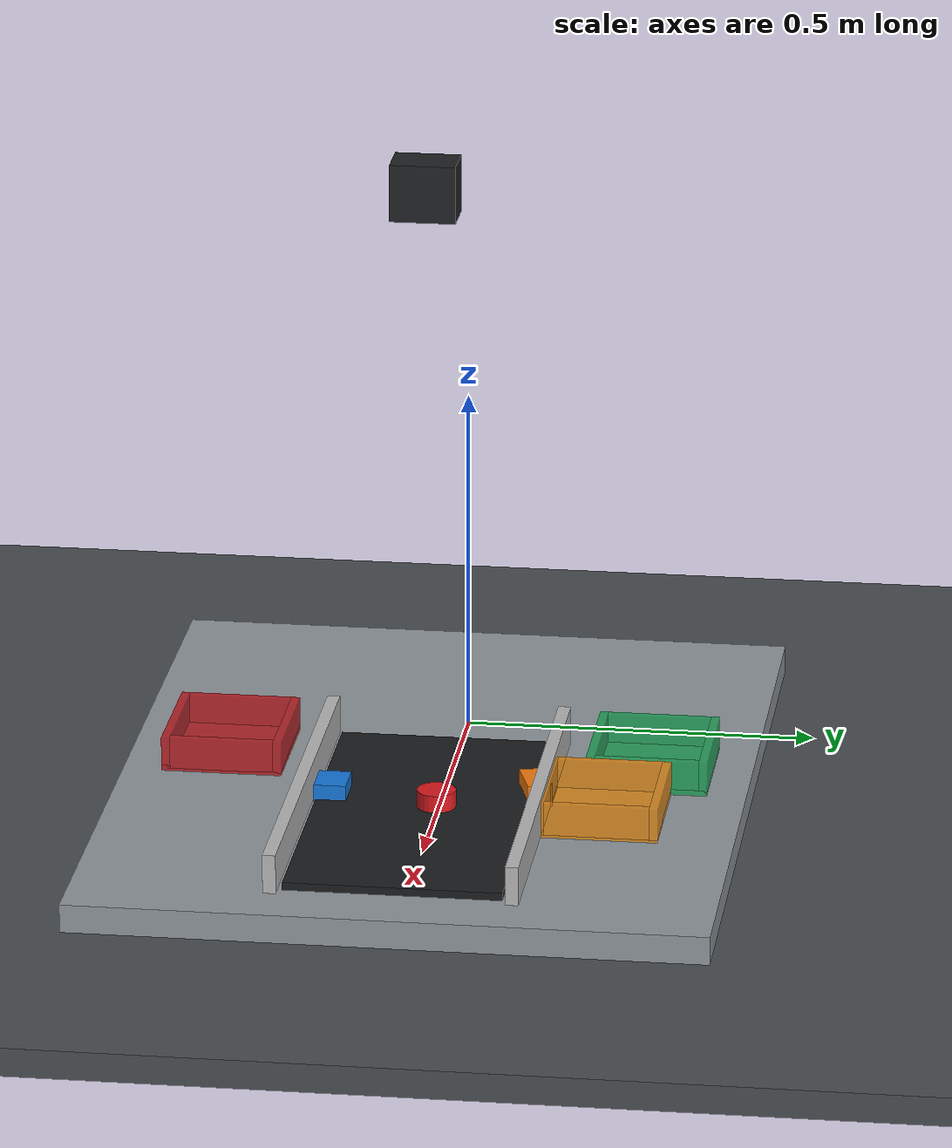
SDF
<?xml version="1.0"?>
<sdf version="1.10">
  <world name="sorting_cell">
    <physics name="fast_physics" type="ignored">
      <max_step_size>0.004</max_step_size>
      <real_time_factor>1.0</real_time_factor>
    </physics>
    <gravity>0 0 -9.81</gravity>

    <plugin filename="gz-sim-physics-system" name="gz::sim::systems::Physics"/>
    <plugin filename="gz-sim-user-commands-system" name="gz::sim::systems::UserCommands"/>
    <plugin filename="gz-sim-scene-broadcaster-system" name="gz::sim::systems::SceneBroadcaster"/>
    <plugin filename="gz-sim-sensors-system" name="gz::sim::systems::Sensors">
      <render_engine>ogre2</render_engine>
    </plugin>

    <scene>
      <ambient>0.42 0.42 0.45 1</ambient>
      <background>0.78 0.82 0.85 1</background>
      <shadows>false</shadows>
    </scene>

    <light name="key_light" type="directional">
      <pose>0 0 2.8 0 0 0</pose>
      <diffuse>0.95 0.95 0.92 1</diffuse>
      <specular>0.25 0.25 0.25 1</specular>
      <direction>-0.35 0.20 -1.0</direction>
      <cast_shadows>false</cast_shadows>
    </light>

    <model name="floor">
      <static>true</static>
      <link name="floor_link">
        <collision name="collision"><geometry><box><size>4 4 0.04</size></box></geometry></collision>
        <visual name="visual">
          <geometry><box><size>4 4 0.04</size></box></geometry>
          <material><ambient>0.22 0.24 0.26 1</ambient><diffuse>0.28 0.30 0.32 1</diffuse></material>
        </visual>
      </link>
    </model>

    <model name="workbench">
      <static>true</static>
      <pose>0.34 0 0.02 0 0 0</pose>
      <link name="bench_link">
        <collision name="top_collision"><pose>0 0 0.02 0 0 0</pose><geometry><box><size>1.10 0.88 0.04</size></box></geometry></collision>
        <visual name="top_visual">
          <pose>0 0 0.02 0 0 0</pose>
          <geometry><box><size>1.10 0.88 0.04</size></box></geometry>
          <material><ambient>0.45 0.48 0.50 1</ambient><diffuse>0.56 0.59 0.61 1</diffuse></material>
        </visual>
        <visual name="inspection_belt">
          <pose>0.18 0 0.045 0 0 0</pose>
          <geometry><box><size>0.56 0.30 0.012</size></box></geometry>
          <material><ambient>0.07 0.08 0.09 1</ambient><diffuse>0.10 0.11 0.12 1</diffuse></material>
        </visual>
        <visual name="left_rail"><pose>0.18 0.165 0.07 0 0 0</pose><geometry><box><size>0.60 0.018 0.055</size></box></geometry></visual>
        <visual name="right_rail"><pose>0.18 -0.165 0.07 0 0 0</pose><geometry><box><size>0.60 0.018 0.055</size></box></geometry></visual>
      </link>
    </model>

    <model name="accepted_bin">
      <static>true</static>
      <pose>0.30 0.30 0.06 0 0 0</pose>
      <link name="link">
        <collision name="base_collision"><pose>0 0 0.004 0 0 0</pose><geometry><box><size>0.18 0.17 0.008</size></box></geometry></collision>
        <collision name="front_collision"><pose>0 0.079 0.0265 0 0 0</pose><geometry><box><size>0.18 0.012 0.045</size></box></geometry></collision>
        <collision name="back_collision"><pose>0 -0.079 0.0265 0 0 0</pose><geometry><box><size>0.18 0.012 0.045</size></box></geometry></collision>
        <collision name="left_collision"><pose>0.084 0 0.0265 0 0 0</pose><geometry><box><size>0.012 0.146 0.045</size></box></geometry></collision>
        <collision name="right_collision"><pose>-0.084 0 0.0265 0 0 0</pose><geometry><box><size>0.012 0.146 0.045</size></box></geometry></collision>
        <visual name="base_visual"><pose>0 0 0.004 0 0 0</pose><geometry><box><size>0.18 0.17 0.008</size></box></geometry><material><ambient>0.10 0.55 0.30 1</ambient><diffuse>0.12 0.68 0.36 1</diffuse></material><transparency>0.18</transparency></visual>
        <visual name="front_visual"><pose>0 0.079 0.0265 0 0 0</pose><geometry><box><size>0.18 0.012 0.045</size></box></geometry><material><ambient>0.10 0.55 0.30 1</ambient><diffuse>0.12 0.68 0.36 1</diffuse></material><transparency>0.18</transparency></visual>
        <visual name="back_visual"><pose>0 -0.079 0.0265 0 0 0</pose><geometry><box><size>0.18 0.012 0.045</size></box></geometry><material><ambient>0.10 0.55 0.30 1</ambient><diffuse>0.12 0.68 0.36 1</diffuse></material><transparency>0.18</transparency></visual>
        <visual name="left_visual"><pose>0.084 0 0.0265 0 0 0</pose><geometry><box><size>0.012 0.146 0.045</size></box></geometry><material><ambient>0.10 0.55 0.30 1</ambient><diffuse>0.12 0.68 0.36 1</diffuse></material><transparency>0.18</transparency></visual>
        <visual name="right_visual"><pose>-0.084 0 0.0265 0 0 0</pose><geometry><box><size>0.012 0.146 0.045</size></box></geometry><material><ambient>0.10 0.55 0.30 1</ambient><diffuse>0.12 0.68 0.36 1</diffuse></material><transparency>0.18</transparency></visual>
      </link>
    </model>
    <model name="reject_bin">
      <static>true</static>
      <pose>0.30 -0.30 0.06 0 0 0</pose>
      <link name="link">
        <collision name="base_collision"><pose>0 0 0.004 0 0 0</pose><geometry><box><size>0.18 0.17 0.008</size></box></geometry></collision>
        <collision name="front_collision"><pose>0 0.079 0.0265 0 0 0</pose><geometry><box><size>0.18 0.012 0.045</size></box></geometry></collision>
        <collision name="back_collision"><pose>0 -0.079 0.0265 0 0 0</pose><geometry><box><size>0.18 0.012 0.045</size></box></geometry></collision>
        <collision name="left_collision"><pose>0.084 0 0.0265 0 0 0</pose><geometry><box><size>0.012 0.146 0.045</size></box></geometry></collision>
        <collision name="right_collision"><pose>-0.084 0 0.0265 0 0 0</pose><geometry><box><size>0.012 0.146 0.045</size></box></geometry></collision>
        <visual name="base_visual"><pose>0 0 0.004 0 0 0</pose><geometry><box><size>0.18 0.17 0.008</size></box></geometry><material><ambient>0.65 0.08 0.10 1</ambient><diffuse>0.78 0.10 0.12 1</diffuse></material><transparency>0.18</transparency></visual>
        <visual name="front_visual"><pose>0 0.079 0.0265 0 0 0</pose><geometry><box><size>0.18 0.012 0.045</size></box></geometry><material><ambient>0.65 0.08 0.10 1</ambient><diffuse>0.78 0.10 0.12 1</diffuse></material><transparency>0.18</transparency></visual>
        <visual name="back_visual"><pose>0 -0.079 0.0265 0 0 0</pose><geometry><box><size>0.18 0.012 0.045</size></box></geometry><material><ambient>0.65 0.08 0.10 1</ambient><diffuse>0.78 0.10 0.12 1</diffuse></material><transparency>0.18</transparency></visual>
        <visual name="left_visual"><pose>0.084 0 0.0265 0 0 0</pose><geometry><box><size>0.012 0.146 0.045</size></box></geometry><material><ambient>0.65 0.08 0.10 1</ambient><diffuse>0.78 0.10 0.12 1</diffuse></material><transparency>0.18</transparency></visual>
        <visual name="right_visual"><pose>-0.084 0 0.0265 0 0 0</pose><geometry><box><size>0.012 0.146 0.045</size></box></geometry><material><ambient>0.65 0.08 0.10 1</ambient><diffuse>0.78 0.10 0.12 1</diffuse></material><transparency>0.18</transparency></visual>
      </link>
    </model>
    <model name="rework_bin">
      <static>true</static>
      <pose>0.48 0.25 0.06 0 0 0</pose>
      <link name="link">
        <collision name="base_collision"><pose>0 0 0.004 0 0 0</pose><geometry><box><size>0.18 0.17 0.008</size></box></geometry></collision>
        <collision name="front_collision"><pose>0 0.079 0.0265 0 0 0</pose><geometry><box><size>0.18 0.012 0.045</size></box></geometry></collision>
        <collision name="back_collision"><pose>0 -0.079 0.0265 0 0 0</pose><geometry><box><size>0.18 0.012 0.045</size></box></geometry></collision>
        <collision name="left_collision"><pose>0.084 0 0.0265 0 0 0</pose><geometry><box><size>0.012 0.146 0.045</size></box></geometry></collision>
        <collision name="right_collision"><pose>-0.084 0 0.0265 0 0 0</pose><geometry><box><size>0.012 0.146 0.045</size></box></geometry></collision>
        <visual name="base_visual"><pose>0 0 0.004 0 0 0</pose><geometry><box><size>0.18 0.17 0.008</size></box></geometry><material><ambient>0.86 0.48 0.06 1</ambient><diffuse>0.96 0.58 0.08 1</diffuse></material><transparency>0.18</transparency></visual>
        <visual name="front_visual"><pose>0 0.079 0.0265 0 0 0</pose><geometry><box><size>0.18 0.012 0.045</size></box></geometry><material><ambient>0.86 0.48 0.06 1</ambient><diffuse>0.96 0.58 0.08 1</diffuse></material><transparency>0.18</transparency></visual>
        <visual name="back_visual"><pose>0 -0.079 0.0265 0 0 0</pose><geometry><box><size>0.18 0.012 0.045</size></box></geometry><material><ambient>0.86 0.48 0.06 1</ambient><diffuse>0.96 0.58 0.08 1</diffuse></material><transparency>0.18</transparency></visual>
        <visual name="left_visual"><pose>0.084 0 0.0265 0 0 0</pose><geometry><box><size>0.012 0.146 0.045</size></box></geometry><material><ambient>0.86 0.48 0.06 1</ambient><diffuse>0.96 0.58 0.08 1</diffuse></material><transparency>0.18</transparency></visual>
        <visual name="right_visual"><pose>-0.084 0 0.0265 0 0 0</pose><geometry><box><size>0.012 0.146 0.045</size></box></geometry><material><ambient>0.86 0.48 0.06 1</ambient><diffuse>0.96 0.58 0.08 1</diffuse></material><transparency>0.18</transparency></visual>
      </link>
    </model>

    <model name="part_blue">
      <pose>0.47 -0.13 0.075 0 0 0</pose>
      <link name="link">
        <inertial><mass>0.08</mass><inertia><ixx>0.00002</ixx><iyy>0.00002</iyy><izz>0.00002</izz></inertia></inertial>
        <collision name="collision"><geometry><box><size>0.055 0.045 0.035</size></box></geometry></collision>
        <visual name="visual"><geometry><box><size>0.055 0.045 0.035</size></box></geometry><material><ambient>0.05 0.34 0.66 1</ambient><diffuse>0.08 0.47 0.86 1</diffuse></material></visual>
      </link>
    </model>
    <model name="part_red">
      <pose>0.50 0.02 0.078 0 0 0</pose>
      <link name="link">
        <inertial><mass>0.08</mass><inertia><ixx>0.00002</ixx><iyy>0.00002</iyy><izz>0.00002</izz></inertia></inertial>
        <collision name="collision"><geometry><cylinder><radius>0.027</radius><length>0.035</length></cylinder></geometry></collision>
        <visual name="visual"><geometry><cylinder><radius>0.027</radius><length>0.035</length></cylinder></geometry><material><ambient>0.70 0.06 0.08 1</ambient><diffuse>0.86 0.10 0.12 1</diffuse></material></visual>
      </link>
    </model>
    <model name="part_orange">
      <pose>0.43 0.15 0.075 0 0 0.30</pose>
      <link name="link">
        <inertial><mass>0.08</mass><inertia><ixx>0.00002</ixx><iyy>0.00002</iyy><izz>0.00002</izz></inertia></inertial>
        <collision name="collision"><geometry><box><size>0.065 0.035 0.035</size></box></geometry></collision>
        <visual name="visual"><geometry><box><size>0.065 0.035 0.035</size></box></geometry><material><ambient>0.86 0.36 0.04 1</ambient><diffuse>0.96 0.48 0.06 1</diffuse></material></visual>
      </link>
    </model>

    <model name="overhead_camera">
      <static>true</static>
      <pose>0.45 0 0.95 0 1.570796 0</pose>
      <link name="camera_link">
        <visual name="body"><geometry><box><size>0.08 0.09 0.06</size></box></geometry><material><ambient>0.08 0.09 0.10 1</ambient><diffuse>0.12 0.13 0.14 1</diffuse></material></visual>
        <sensor name="rgb_camera" type="camera">
          <always_on>true</always_on>
          <update_rate>15</update_rate>
          <topic>/sorting_cell/camera/image_raw</topic>
          <camera>
            <horizontal_fov>1.05</horizontal_fov>
            <image><width>640</width><height>480</height><format>R8G8B8</format></image>
            <clip><near>0.05</near><far>5.0</far></clip>
            <camera_info_topic>/sorting_cell/camera/camera_info</camera_info_topic>
          </camera>
        </sensor>
      </link>
    </model>
  </world>
</sdf>
